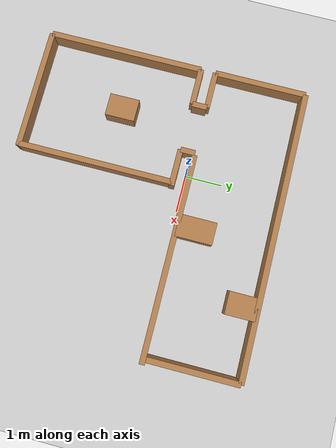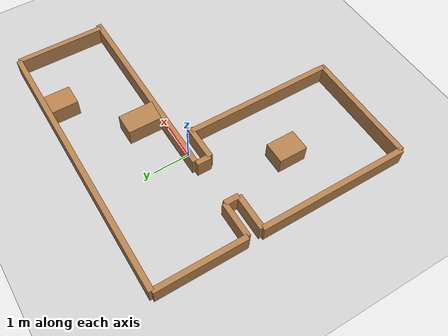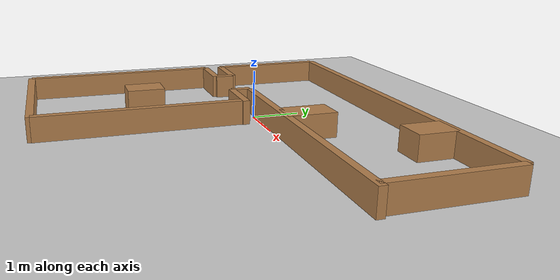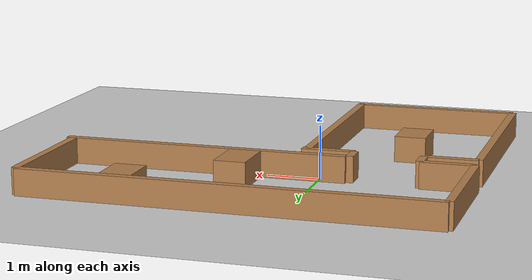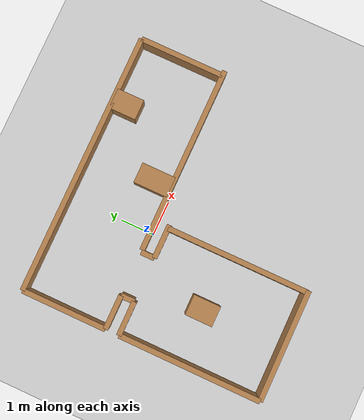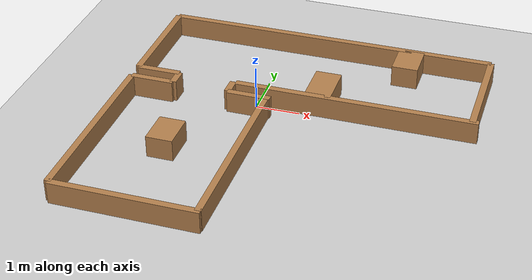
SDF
<sdf version="1.7">
 <world name="default">
  <light name="sun" type="directional">
   <pose>0 0 10 0 -0 0</pose>
   <diffuse>0.8 0.8 0.8 1</diffuse>
   <specular>0.2 0.2 0.2 1</specular>
   <attenuation>
    <range>1000</range>
    <constant>0.9</constant>
    <linear>0.01</linear>
    <quadratic>0.001</quadratic>
   </attenuation>
   <direction>-0.5 0.1 -0.9</direction>
   <spot><inner_angle>0</inner_angle><outer_angle>0</outer_angle><falloff>0</falloff></spot>
  </light>
  <model name="ground_plane">
   <static>1</static>
   <link name="link">
    <collision name="collision">
     <geometry><plane><normal>0 0 1</normal><size>100 100</size></plane></geometry>
     <surface><friction><ode><mu>100</mu><mu2>50</mu2></ode></friction></surface>
    </collision>
    <visual name="visual">
     <cast_shadows>0</cast_shadows>
     <geometry><plane><normal>0 0 1</normal><size>100 100</size></plane></geometry>
     <material>
      <script><uri>file://media/materials/scripts/gazebo.material</uri><name>Gazebo/Grey</name></script>
     </material>
    </visual>
   </link>
  </model>
  <gravity>0 0 -9.8</gravity>
  <magnetic_field>6e-06 2.3e-05 -4.2e-05</magnetic_field>
  <atmosphere type="adiabatic"/>
  <physics type="ode">
   <max_step_size>0.001</max_step_size>
   <real_time_factor>1</real_time_factor>
   <real_time_update_rate>1000</real_time_update_rate>
  </physics>
  <scene><ambient>0.4 0.4 0.4 1</ambient><background>0.7 0.7 0.7 1</background><shadows>1</shadows></scene>
  <spherical_coordinates>
   <surface_model>EARTH_WGS84</surface_model>
   <latitude_deg>0</latitude_deg>
   <longitude_deg>0</longitude_deg>
   <elevation>0</elevation>
   <heading_deg>0</heading_deg>
  </spherical_coordinates>
  <model name="turtlebot3_plaza">
   <pose>0.984754 -0.902132 0 0 -0 0</pose>
   <link name="Wall_0">
    <collision name="Wall_0_Collision">
     <geometry><box><size>7.72 0.15 0.5</size></box></geometry>
     <pose>0 0 0.25 0 -0 0</pose>
    </collision>
    <visual name="Wall_0_Visual">
     <pose>0 0 0.25 0 -0 0</pose>
     <geometry><box><size>7.72 0.15 0.5</size></box></geometry>
     <material>
      <script><uri>file://media/materials/scripts/gazebo.material</uri><name>Gazebo/Wood</name></script>
      <ambient>1 1 1 1</ambient>
     </material>
    </visual>
    <pose>0 3.5 0 0 -0 0</pose>
   </link>
   <link name="Wall_1">
    <collision name="Wall_1_Collision">
     <geometry><box><size>5.5 0.15 0.5</size></box></geometry>
     <pose>0 0 0.25 0 -0 0</pose>
    </collision>
    <visual name="Wall_1_Visual">
     <pose>0 0 0.25 0 -0 0</pose>
     <geometry><box><size>5.5 0.15 0.5</size></box></geometry>
     <material>
      <script><uri>file://media/materials/scripts/gazebo.material</uri><name>Gazebo/Wood</name></script>
      <ambient>1 1 1 1</ambient>
     </material>
    </visual>
    <pose>1.25 1 0 0 -0 0</pose>
   </link>
   <link name="Wall_2">
    <collision name="Wall_2_Collision">
     <geometry><box><size>2.5 0.15 0.5</size></box></geometry>
     <pose>0 0 0.25 0 -0 0</pose>
    </collision>
    <visual name="Wall_2_Visual">
     <pose>0 0 0.25 0 -0 0</pose>
     <geometry><box><size>2.5 0.15 0.5</size></box></geometry>
     <material>
      <script><uri>file://media/materials/scripts/gazebo.material</uri><name>Gazebo/Wood</name></script>
      <ambient>1 1 1 1</ambient>
     </material>
    </visual>
    <pose>3.86 2.25 0 0 -0 1.57</pose>
   </link>
   <link name="Wall_3">
    <collision name="Wall_3_Collision">
     <geometry><box><size>2.5 0.15 0.5</size></box></geometry>
     <pose>0 0 0.25 0 -0 0</pose>
    </collision>
    <visual name="Wall_3_Visual">
     <pose>0 0 0.25 0 -0 0</pose>
     <geometry><box><size>2.5 0.15 0.5</size></box></geometry>
     <material>
      <script><uri>file://media/materials/scripts/gazebo.material</uri><name>Gazebo/Wood</name></script>
      <ambient>1 1 1 1</ambient>
     </material>
    </visual>
    <pose>-3.86 2.25 0 0 -0 1.57</pose>
   </link>
   <link name="Wall_4">
    <collision name="Wall_4_Collision">
     <geometry><box><size>1 0.15 0.5</size></box></geometry>
     <pose>0 0 0.25 0 -0 0</pose>
    </collision>
    <visual name="Wall_4_Visual">
     <pose>0 0 0.25 0 -0 0</pose>
     <geometry><box><size>1 0.15 0.5</size></box></geometry>
     <material>
      <script><uri>file://media/materials/scripts/gazebo.material</uri><name>Gazebo/Wood</name></script>
      <ambient>1 1 1 1</ambient>
     </material>
    </visual>
    <pose>-3.36 1 0 0 -0 0</pose>
   </link>
   <link name="Wall_5">
    <collision name="Wall_5_Collision">
     <geometry><box><size>0.4 0.15 0.5</size></box></geometry>
     <pose>0 0 0.25 0 -0 0</pose>
    </collision>
    <visual name="Wall_5_Visual">
     <pose>0 0 0.25 0 -0 0</pose>
     <geometry><box><size>0.4 0.15 0.5</size></box></geometry>
     <material>
      <script><uri>file://media/materials/scripts/gazebo.material</uri><name>Gazebo/Wood</name></script>
      <ambient>1 1 1 1</ambient>
     </material>
    </visual>
    <pose>-2.86 0.8 0 0 -0 1.57</pose>
   </link>
   <link name="Wall_6">
    <collision name="Wall_6_Collision">
     <geometry><box><size>0.4 0.15 0.5</size></box></geometry>
     <pose>0 0 0.25 0 -0 0</pose>
    </collision>
    <visual name="Wall_6_Visual">
     <pose>0 0 0.25 0 -0 0</pose>
     <geometry><box><size>0.4 0.15 0.5</size></box></geometry>
     <material>
      <script><uri>file://media/materials/scripts/gazebo.material</uri><name>Gazebo/Wood</name></script>
      <ambient>1 1 1 1</ambient>
     </material>
    </visual>
    <pose>-1.56 0.8 0 0 -0 1.57</pose>
   </link>
   <link name="Wall_7">
    <collision name="Wall_7_Collision">
     <geometry><box><size>1 0.15 0.5</size></box></geometry>
     <pose>0 0 0.25 0 -0 0</pose>
    </collision>
    <visual name="Wall_7_Visual">
     <pose>0 0 0.25 0 -0 0</pose>
     <geometry><box><size>1 0.15 0.5</size></box></geometry>
     <material>
      <script><uri>file://media/materials/scripts/gazebo.material</uri><name>Gazebo/Wood</name></script>
      <ambient>1 1 1 1</ambient>
     </material>
    </visual>
    <pose>-3.36 0.6 0 0 -0 0</pose>
   </link>
   <link name="Wall_8">
    <collision name="Wall_8_Collision">
     <geometry><box><size>1 0.15 0.5</size></box></geometry>
     <pose>0 0 0.25 0 -0 0</pose>
    </collision>
    <visual name="Wall_8_Visual">
     <pose>0 0 0.25 0 -0 0</pose>
     <geometry><box><size>1 0.15 0.5</size></box></geometry>
     <material>
      <script><uri>file://media/materials/scripts/gazebo.material</uri><name>Gazebo/Wood</name></script>
      <ambient>1 1 1 1</ambient>
     </material>
    </visual>
    <pose>-1.06 0.6 0 0 -0 0</pose>
   </link>
   <link name="Wall_9">
    <collision name="Wall_9_Collision">
     <geometry><box><size>4.2 0.15 0.5</size></box></geometry>
     <pose>0 0 0.25 0 -0 0</pose>
    </collision>
    <visual name="Wall_9_Visual">
     <pose>0 0 0.25 0 -0 0</pose>
     <geometry><box><size>4.2 0.15 0.5</size></box></geometry>
     <material>
      <script><uri>file://media/materials/scripts/gazebo.material</uri><name>Gazebo/Wood</name></script>
      <ambient>1 1 1 1</ambient>
     </material>
    </visual>
    <pose>-3.86 -1.5 0 0 -0 1.57</pose>
   </link>
   <link name="Wall_10">
    <collision name="Wall_10_Collision">
     <geometry><box><size>4.2 0.15 0.5</size></box></geometry>
     <pose>0 0 0.25 0 -0 0</pose>
    </collision>
    <visual name="Wall_10_Visual">
     <pose>0 0 0.25 0 -0 0</pose>
     <geometry><box><size>4.2 0.15 0.5</size></box></geometry>
     <material>
      <script><uri>file://media/materials/scripts/gazebo.material</uri><name>Gazebo/Wood</name></script>
      <ambient>1 1 1 1</ambient>
     </material>
    </visual>
    <pose>-0.66 -1.5 0 0 -0 1.57</pose>
   </link>
   <link name="Wall_11">
    <collision name="Wall_11_Collision">
     <geometry><box><size>3.26 0.15 0.5</size></box></geometry>
     <pose>0 0 0.25 0 -0 0</pose>
    </collision>
    <visual name="Wall_11_Visual">
     <pose>0 0 0.25 0 -0 0</pose>
     <geometry><box><size>3.26 0.15 0.5</size></box></geometry>
     <material>
      <script><uri>file://media/materials/scripts/gazebo.material</uri><name>Gazebo/Wood</name></script>
      <ambient>1 1 1 1</ambient>
     </material>
    </visual>
    <pose>-2.23 -3.6 0 0 -0 0</pose>
   </link>
   <link name="Wall_12">
    <collision name="Wall_12_Collision">
     <geometry><box><size>0.8 0.6 0.5</size></box></geometry>
     <pose>0 0 0.25 0 -0 0</pose>
    </collision>
    <visual name="Wall_12_Visual">
     <pose>0 0 0.25 0 -0 0</pose>
     <geometry><box><size>0.8 0.6 0.5</size></box></geometry>
     <material>
      <script><uri>file://media/materials/scripts/gazebo.material</uri><name>Gazebo/Wood</name></script>
      <ambient>1 1 1 1</ambient>
     </material>
    </visual>
    <pose>2 3.1 0 0 -0 1.57</pose>
   </link>
   <link name="Wall_13">
    <collision name="Wall_13_Collision">
     <geometry><box><size>1 0.6 0.5</size></box></geometry>
     <pose>0 0 0.25 0 -0 0</pose>
    </collision>
    <visual name="Wall_13_Visual">
     <pose>0 0 0.25 0 -0 0</pose>
     <geometry><box><size>1 0.6 0.5</size></box></geometry>
     <material>
      <script><uri>file://media/materials/scripts/gazebo.material</uri><name>Gazebo/Wood</name></script>
      <ambient>1 1 1 1</ambient>
     </material>
    </visual>
    <pose>0.4 1.5 0 0 -0 1.57</pose>
   </link>
   <link name="Wall_14">
    <collision name="Wall_14_Collision">
     <geometry><box><size>0.8 0.6 0.5</size></box></geometry>
     <pose>0 0 0.25 0 -0 0</pose>
    </collision>
    <visual name="Wall_14_Visual">
     <pose>0 0 0.25 0 -0 0</pose>
     <geometry><box><size>0.8 0.6 0.5</size></box></geometry>
     <material>
      <script><uri>file://media/materials/scripts/gazebo.material</uri><name>Gazebo/Wood</name></script>
      <ambient>1 1 1 1</ambient>
     </material>
    </visual>
    <pose>-2.3 -1.2 0 0 -0 1.57</pose>
   </link>
   <static>1</static>
  </model>
 </world>
</sdf>
